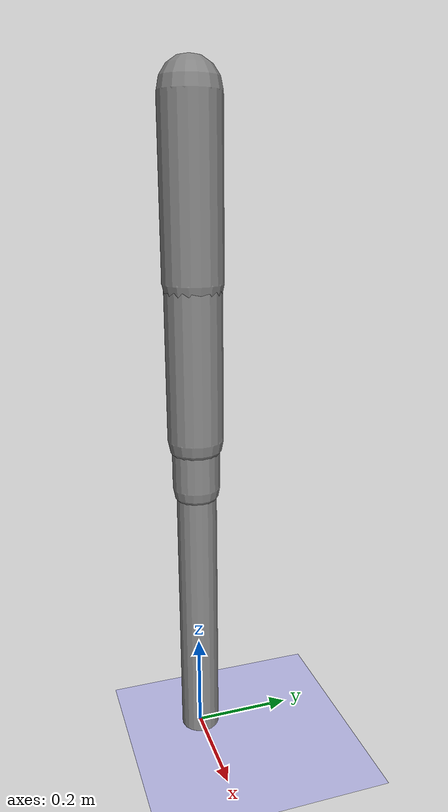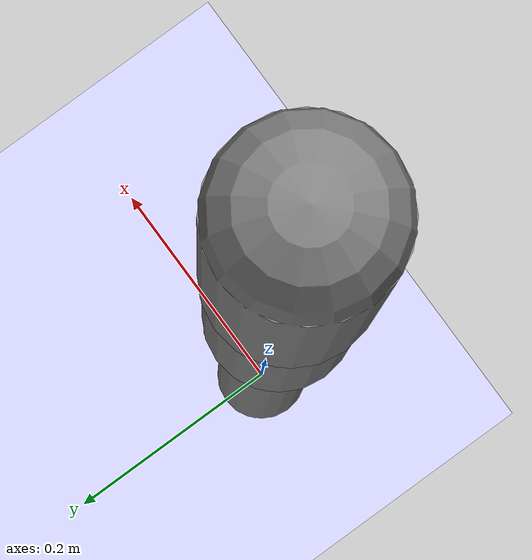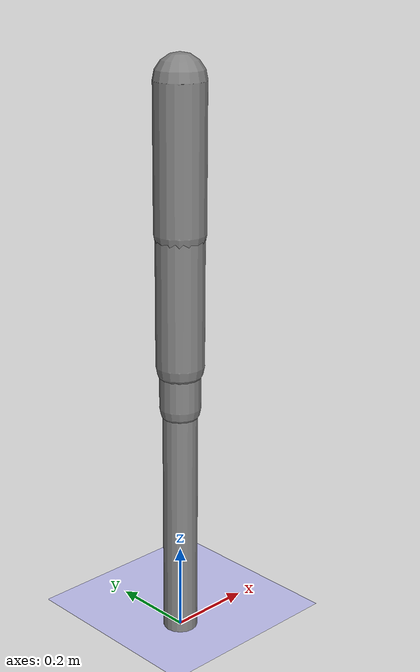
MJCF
<?xml version='1.0' encoding='UTF-8'?>
<mujoco model="robot_model">
  <worldbody>
    <light name="light" pos="0 -3 10" dir="0 0.5 -1" diffuse=".8 .8 .8" specular="0.1 0.1 0.1"/>
    <geom name="floor" type="plane" size="10.0 10.0 0.1" pos="0 0 0" rgba="0.8 0.8 1 1" contype="2" conaffinity="1"/>
    <body name="limb0" pos="0 0 0">
      <geom type="capsule" fromto="0 0 0 0 0 0.5945203822640008" size="0.04" density="1040.982501939072" contype="1" conaffinity="2"/>
      <site type="sphere" size="0.01" name="limb0_site0" pos="0 0 0.528426248554787"/>
      <site type="sphere" size="0.01" name="limb0_site1" pos="0 0 0.5598635035659907"/>
      <site type="sphere" size="0.01" name="limb0_site2" pos="0 0 0.18102873114349274"/>
      <freejoint name="limb0_root"/>
      <body name="limb1" pos="0 0 0.528426248554787">
        <geom type="capsule" fromto="0 0 0 0 0 0.2108483557747831" size="0.03176305440673138" density="688.7771406626807" contype="1" conaffinity="2"/>
        <site type="sphere" size="0.01" name="limb1_site0" pos="0 0 0.1315488757351795"/>
        <site type="sphere" size="0.01" name="limb1_site1" pos="0 0 0.20255461164896735"/>
        <body name="limb2" pos="0 0 0.1315488757351795">
          <geom type="capsule" fromto="0 0 0 0 0 0.3275892204410617" size="0.05495976002937755" density="729.9579150506644" contype="1" conaffinity="2"/>
          <site type="sphere" size="0.01" name="limb2_site0" pos="0 0 0.08508694488195426"/>
          <body name="limb3" pos="0 0 0.08508694488195426">
            <geom type="capsule" fromto="0 0 0 0 0 0.2718382711396347" size="0.052967933430587415" density="959.6445780864858" contype="1" conaffinity="2"/>
            <joint name="joint_limb2_limb3_0" type="hinge" axis="0 1 0" range="-59.56851237173767 59.56851237173767" damping="5.0"/>
          </body>
          <joint name="joint_limb1_limb2_0" type="hinge" axis="0 1 0" range="-78.8368751691934 78.8368751691934" damping="5.0"/>
        </body>
        <body name="limb4" pos="0 0 0.20255461164896735">
          <geom type="capsule" fromto="0 0 0 0 0 0.5" size="0.029941731266355083" density="1200.0" contype="1" conaffinity="2"/>
          <site type="sphere" size="0.01" name="limb4_site0" pos="0 0 0.23003782097203293"/>
          <body name="limb5" pos="0 0 0.23003782097203293">
            <geom type="capsule" fromto="0 0 0 0 0 0.32416014566785406" size="0.05802027449495445" density="1151.1927405454628" contype="1" conaffinity="2"/>
            <joint name="joint_limb4_limb5_0" type="hinge" axis="0 1 0" range="-105.79506732382342 105.79506732382342" damping="5.0"/>
          </body>
          <joint name="joint_limb1_limb4_0" type="hinge" axis="0 1 0" range="-80.38696577407528 80.38696577407528" damping="5.0"/>
        </body>
        <joint name="joint_limb0_limb1_0" type="hinge" axis="0 1 0" range="-95.2928538257149 95.2928538257149" damping="5.0"/>
      </body>
      <body name="limb6" pos="0 0 0.5598635035659907">
        <geom type="capsule" fromto="0 0 0 0 0 0.13267252967633406" size="0.046987777438763034" density="1012.0241807653487" contype="1" conaffinity="2"/>
        <joint name="joint_limb0_limb6_0" type="hinge" axis="0 1 0" range="-46.186401585393725 46.186401585393725" damping="5.0"/>
      </body>
      <body name="limb7" pos="0 0 0.18102873114349274">
        <geom type="capsule" fromto="0 0 0 0 0 0.4977381973264454" size="0.03781191738274304" density="673.42208978592" contype="1" conaffinity="2"/>
        <joint name="joint_limb0_limb7_0" type="hinge" axis="0 0 1" range="-53.458359346818035 53.458359346818035" damping="5.0"/>
      </body>
    </body>
  </worldbody>
  <actuator>
    <position name="position_actuator_joint_limb0_limb1_0" joint="joint_limb0_limb1_0" gear="1.4090018695678854" inheritrange="1" kp="100.0"/>
    <position name="position_actuator_joint_limb1_limb2_0" joint="joint_limb1_limb2_0" gear="1.320444813612617" inheritrange="1" kp="100.0"/>
    <position name="position_actuator_joint_limb2_limb3_0" joint="joint_limb2_limb3_0" gear="1.7547975629340502" inheritrange="1" kp="100.0"/>
    <position name="position_actuator_joint_limb1_limb4_0" joint="joint_limb1_limb4_0" gear="1.272740550353963" inheritrange="1" kp="100.0"/>
    <position name="position_actuator_joint_limb4_limb5_0" joint="joint_limb4_limb5_0" gear="1.0060890082801364" inheritrange="1" kp="100.0"/>
    <position name="position_actuator_joint_limb0_limb6_0" joint="joint_limb0_limb6_0" gear="0.5181521235082891" inheritrange="1" kp="100.0"/>
    <position name="position_actuator_joint_limb0_limb7_0" joint="joint_limb0_limb7_0" gear="1.4432384967601832" inheritrange="1" kp="100.0"/>
  </actuator>
</mujoco>
